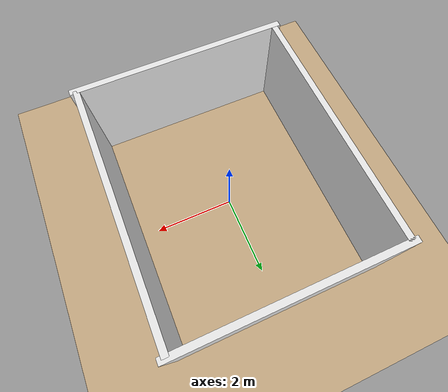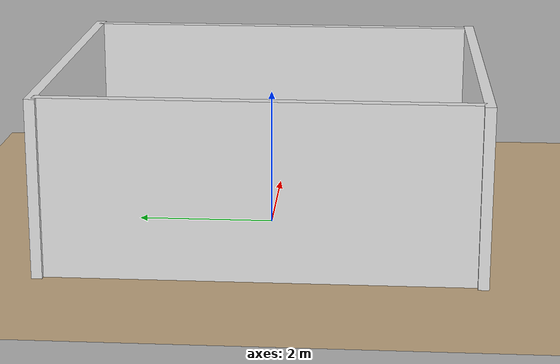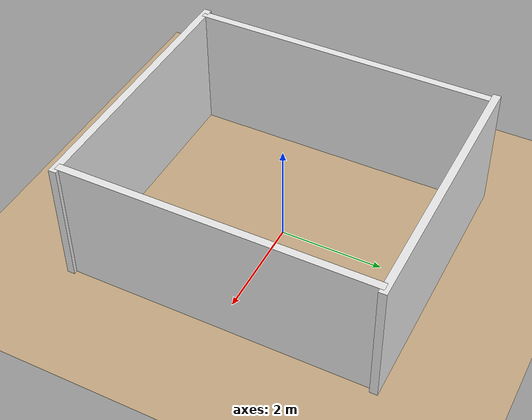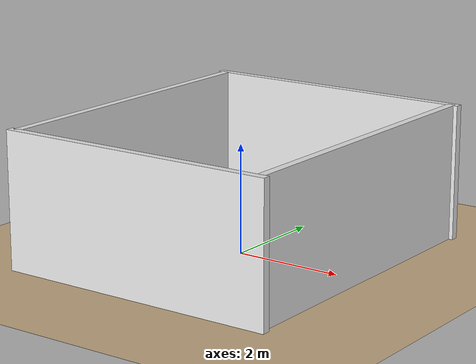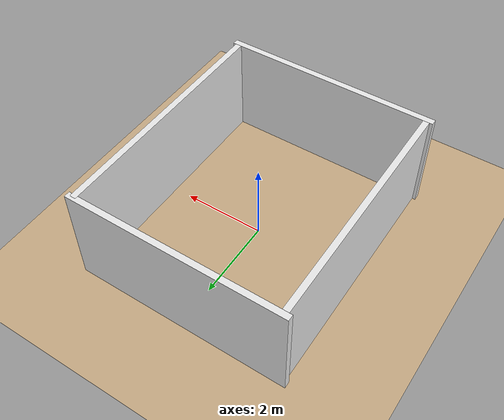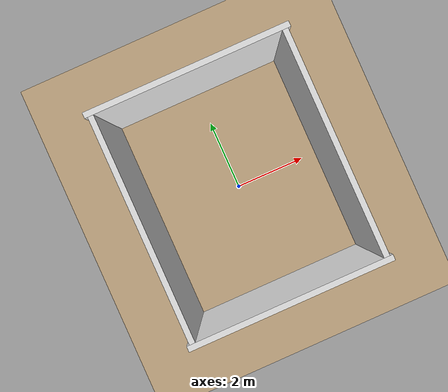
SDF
<?xml version="1.0" ?>
<sdf version="1.9">
  <world name="empty_room">

    <!-- Physics: 1 ms fixed step, real-time factor 1.0, DART solver -->
    <physics name="1ms" type="ignored">
      <max_step_size>0.001</max_step_size>
      <real_time_factor>1.0</real_time_factor>
    </physics>

    <!-- Gravity -->
    <gravity>0 0 -9.81</gravity>

    <!-- Required Gazebo Harmonic system plugins -->
    <plugin filename="gz-sim-physics-system"
            name="gz::sim::systems::Physics"/>
    <plugin filename="gz-sim-user-commands-system"
            name="gz::sim::systems::UserCommands"/>
    <plugin filename="gz-sim-scene-broadcaster-system"
            name="gz::sim::systems::SceneBroadcaster"/>
    <plugin filename="gz-sim-sensors-system"
            name="gz::sim::systems::Sensors">
      <render_engine>ogre2</render_engine>
    </plugin>
    <plugin filename="gz-sim-imu-system"
            name="gz::sim::systems::Imu"/>
    <plugin filename="gz-sim-contact-system"
            name="gz::sim::systems::Contact"/>

    <!-- Sun: primary directional light casting shadows -->
    <light type="directional" name="sun">
      <cast_shadows>true</cast_shadows>
      <pose>0 0 10 0 0 0</pose>
      <diffuse>0.8 0.8 0.8 1</diffuse>
      <specular>0.2 0.2 0.2 1</specular>
      <direction>-0.5 0.1 -0.9</direction>
    </light>

    <!-- Ceiling point light -->
    <light type="point" name="ceiling_lamp">
      <cast_shadows>false</cast_shadows>
      <pose>0 0 2.4 0 0 0</pose>
      <diffuse>0.9 0.9 0.9 1</diffuse>
      <specular>0.1 0.1 0.1 1</specular>
      <attenuation>
        <range>10</range>
        <constant>0.5</constant>
        <linear>0.01</linear>
        <quadratic>0.001</quadratic>
      </attenuation>
    </light>

    <!-- ===== Ground plane 10 m x 10 m ===== -->
    <model name="ground_plane">
      <static>true</static>
      <link name="link">
        <collision name="collision">
          <geometry>
            <plane>
              <normal>0 0 1</normal>
              <!-- 10 x 10 m surface — well above the 4 x 5 m minimum -->
              <size>10 10</size>
            </plane>
          </geometry>
        </collision>
        <visual name="visual">
          <geometry>
            <plane>
              <normal>0 0 1</normal>
              <size>10 10</size>
            </plane>
          </geometry>
          <!-- Wood-tone floor material (#C4A882) -->
          <material>
            <ambient>0.77 0.66 0.51 1</ambient>
            <diffuse>0.77 0.66 0.51 1</diffuse>
            <specular>0.1 0.1 0.1 1</specular>
          </material>
        </visual>
      </link>
    </model>

    <!-- ===== Walls — painted drywall (#E8E8E8) ===== -->

    <!-- North wall: closes the +y side -->
    <model name="wall_north">
      <static>true</static>
      <pose>0 3 1.25 0 0 0</pose>
      <link name="link">
        <collision name="collision">
          <geometry>
            <box><size>5.3 0.15 2.5</size></box>
          </geometry>
        </collision>
        <visual name="visual">
          <geometry>
            <box><size>5.3 0.15 2.5</size></box>
          </geometry>
          <material>
            <ambient>0.91 0.91 0.91 1</ambient>
            <diffuse>0.91 0.91 0.91 1</diffuse>
            <specular>0.05 0.05 0.05 1</specular>
          </material>
        </visual>
      </link>
    </model>

    <!-- South wall: closes the -y side -->
    <model name="wall_south">
      <static>true</static>
      <pose>0 -3 1.25 0 0 0</pose>
      <link name="link">
        <collision name="collision">
          <geometry>
            <box><size>5.3 0.15 2.5</size></box>
          </geometry>
        </collision>
        <visual name="visual">
          <geometry>
            <box><size>5.3 0.15 2.5</size></box>
          </geometry>
          <material>
            <ambient>0.91 0.91 0.91 1</ambient>
            <diffuse>0.91 0.91 0.91 1</diffuse>
            <specular>0.05 0.05 0.05 1</specular>
          </material>
        </visual>
      </link>
    </model>

    <!-- East wall: closes the +x side -->
    <model name="wall_east">
      <static>true</static>
      <pose>2.5 0 1.25 0 0 0</pose>
      <link name="link">
        <collision name="collision">
          <geometry>
            <box><size>0.15 6.0 2.5</size></box>
          </geometry>
        </collision>
        <visual name="visual">
          <geometry>
            <box><size>0.15 6.0 2.5</size></box>
          </geometry>
          <material>
            <ambient>0.91 0.91 0.91 1</ambient>
            <diffuse>0.91 0.91 0.91 1</diffuse>
            <specular>0.05 0.05 0.05 1</specular>
          </material>
        </visual>
      </link>
    </model>

    <!-- West wall: closes the -x side -->
    <model name="wall_west">
      <static>true</static>
      <pose>-2.5 0 1.25 0 0 0</pose>
      <link name="link">
        <collision name="collision">
          <geometry>
            <box><size>0.15 6.0 2.5</size></box>
          </geometry>
        </collision>
        <visual name="visual">
          <geometry>
            <box><size>0.15 6.0 2.5</size></box>
          </geometry>
          <material>
            <ambient>0.91 0.91 0.91 1</ambient>
            <diffuse>0.91 0.91 0.91 1</diffuse>
            <specular>0.05 0.05 0.05 1</specular>
          </material>
        </visual>
      </link>
    </model>

  </world>
</sdf>
